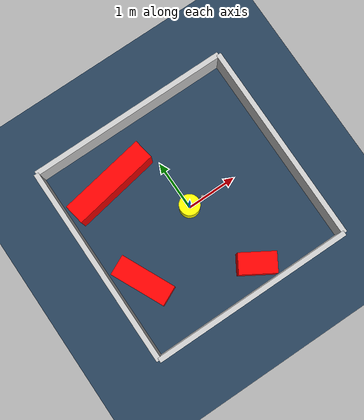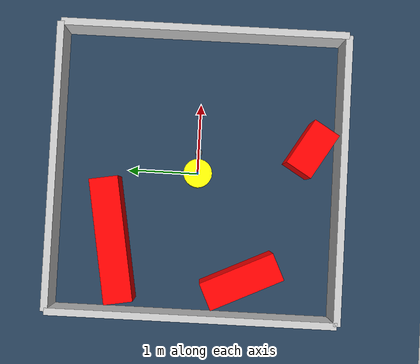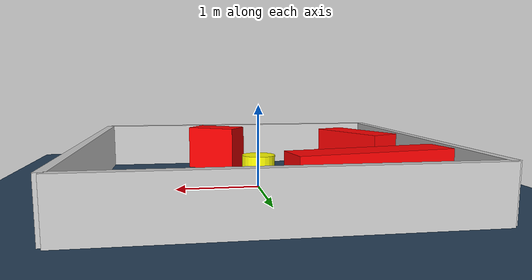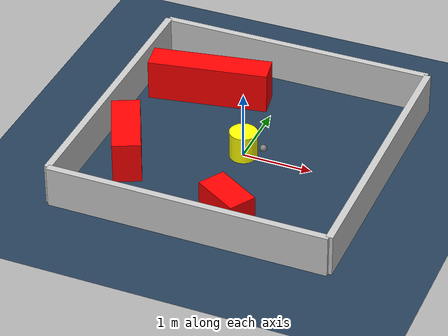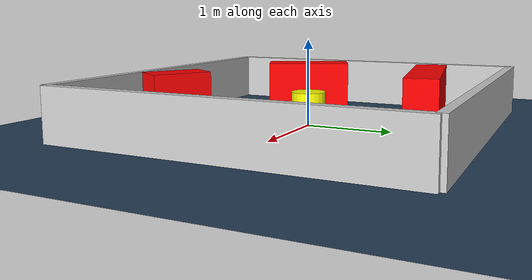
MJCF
<?xml version="1.0" ?>
<mujoco model="generated_environment">
  <option timestep="0.01" integrator="RK4" cone="elliptic"/>
  <default>
    <geom density="1"/>
  </default>
  <asset>
    <texture builtin="gradient" height="3072" rgb1="0.3 0.5 0.7" rgb2="0 0 0" type="skybox" width="512"/>
    <texture builtin="checker" height="300" mark="edge" markrgb="0.8 0.8 0.8" name="groundplane" rgb1="0.2 0.3 0.4" rgb2="0.1 0.2 0.3" type="2d" width="300"/>
    <material name="groundplane" reflectance="0.2" texrepeat="5 5" texture="groundplane" texuniform="true"/>
    <material name="robot" rgba="0.0 1.0 0.0 1"/>
  </asset>
  <worldbody>
    <light dir="0 0 -1" directional="true" pos="0 0 1.5"/>
    <geom condim="4" friction="1.0 0.005 0.001" material="groundplane" name="floor" size="0 0 0.05" type="plane"/>
    <body name="walls">
      <geom name="wall_1" condim="4" pos="-2.0 0.0 0.3" rgba="0.800000011920929 0.800000011920929 0.800000011920929 1.0" size="0.05 2.0 0.3" type="box"/>
      <geom name="wall_2" condim="4" pos="2.0 0.0 0.3" rgba="0.800000011920929 0.800000011920929 0.800000011920929 1.0" size="0.05 2.0 0.3" type="box"/>
      <geom name="wall_3" condim="4" pos="0.0 -2.0 0.3" rgba="0.800000011920929 0.800000011920929 0.800000011920929 1.0" size="2.0 0.05 0.3" type="box"/>
      <geom name="wall_4" condim="4" pos="0.0 2.0 0.3" rgba="0.800000011920929 0.800000011920929 0.800000011920929 1.0" size="2.0 0.05 0.3" type="box"/>
    </body>
    <body name="robot">
      <joint name="joint_x" type="slide" pos="0 0 0" axis="1 0 0"/>
      <joint name="joint_y" type="slide" pos="0 0 0" axis="0 1 0"/>
      <geom name="robot" type="sphere" pos="0.3 0.0 0.2" size="0.05" mass="5." friction="1.0 0.005 0.0001" condim="4" rgba="0.5 0.5 0.5 1.0"/>
      <site name="sensor_ball"/>
    </body>
    <body name="obstacle_movable_1">
      <geom name="obstacle_movable_1" condim="4" pos="0.0 0.0 0.2" euler="0 0 0.0" friction="1.0 0.005 0.001" rgba="1.0 1.0 0.0 1.0" size="0.2 0.2 0.0" type="cylinder" mass="0.1"/>
      <joint type="free"/>
    </body>
    <body name="obstacle_2_static">
      <geom name="obstacle_2_static" condim="4" pos="0.4068273344316724 -1.56644891303557 0.3" euler="0 0 328.6681439676278" friction="1.0 0.005 0.001" rgba="1 0 0 1" size="0.35506875250497794 0.2 0.3" type="box"/>
    </body>
    <body name="obstacle_3_static">
      <geom name="obstacle_3_static" condim="4" pos="-0.984969814355147 1.1441372294440983 0.3" euler="0 0 9.930711037435795" friction="1.0 0.005 0.001" rgba="1 0 0 1" size="0.8679780520883027 0.2 0.3" type="box"/>
    </body>
    <body name="obstacle_4_static">
      <geom name="obstacle_4_static" condim="4" pos="-1.4627623098157279 -0.6756665835176972 0.3" euler="0 0 115.20702632517671" friction="1.0 0.005 0.001" rgba="1 0 0 1" size="0.546147857316568 0.2 0.3" type="box"/>
    </body>
  </worldbody>
  <actuator>
    <motor name="actuator_x" joint="joint_x" gear="1" ctrlrange="-1 1"/>
    <motor name="actuator_y" joint="joint_y" gear="1" ctrlrange="-1 1"/>
  </actuator>
</mujoco>
